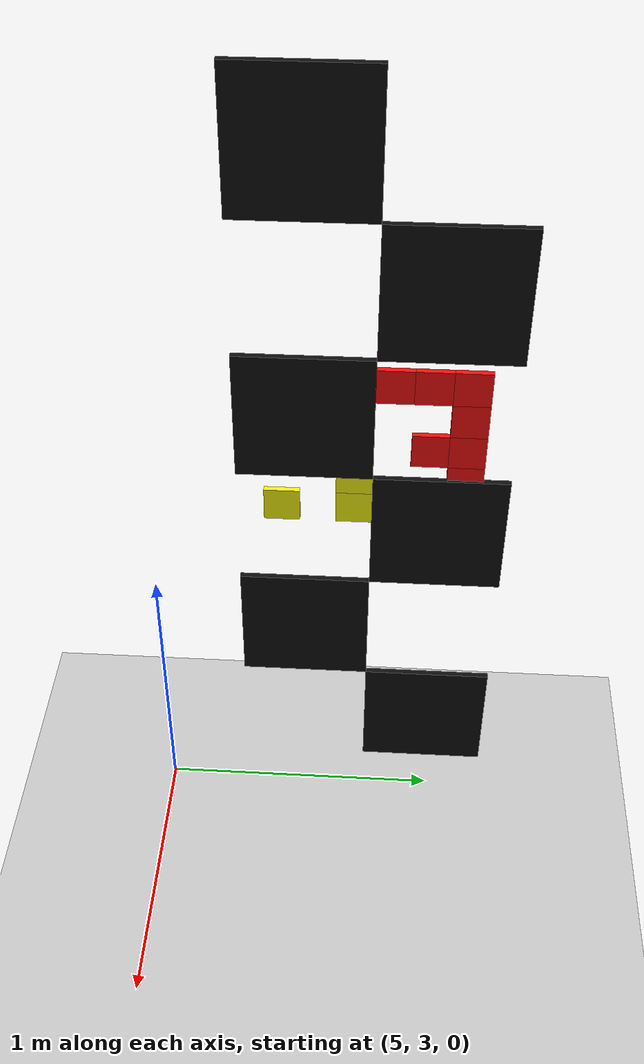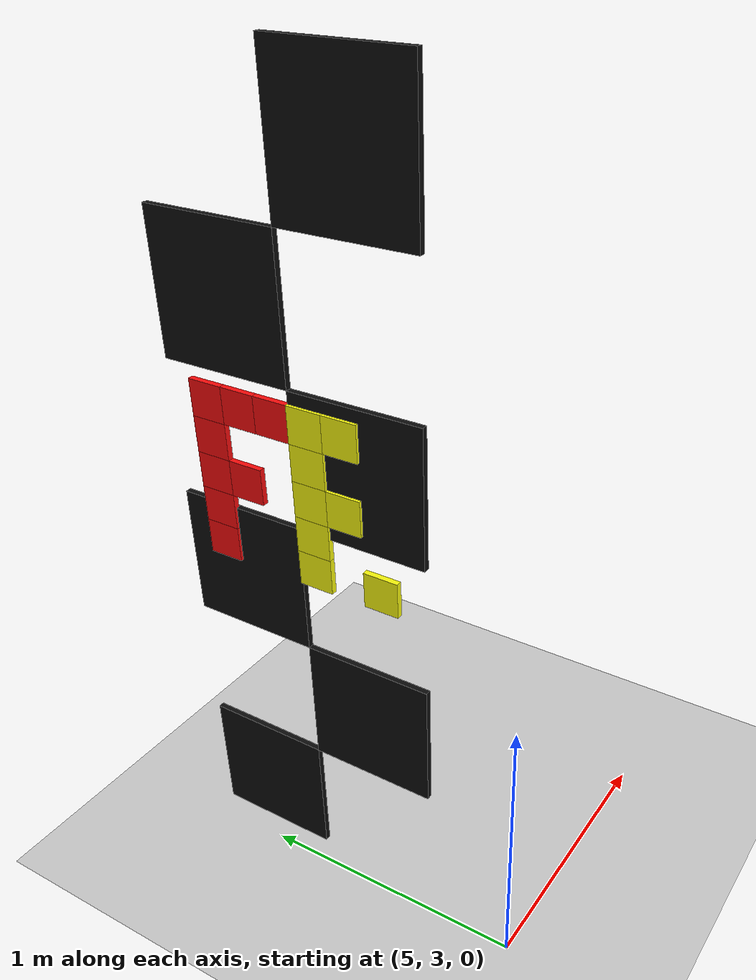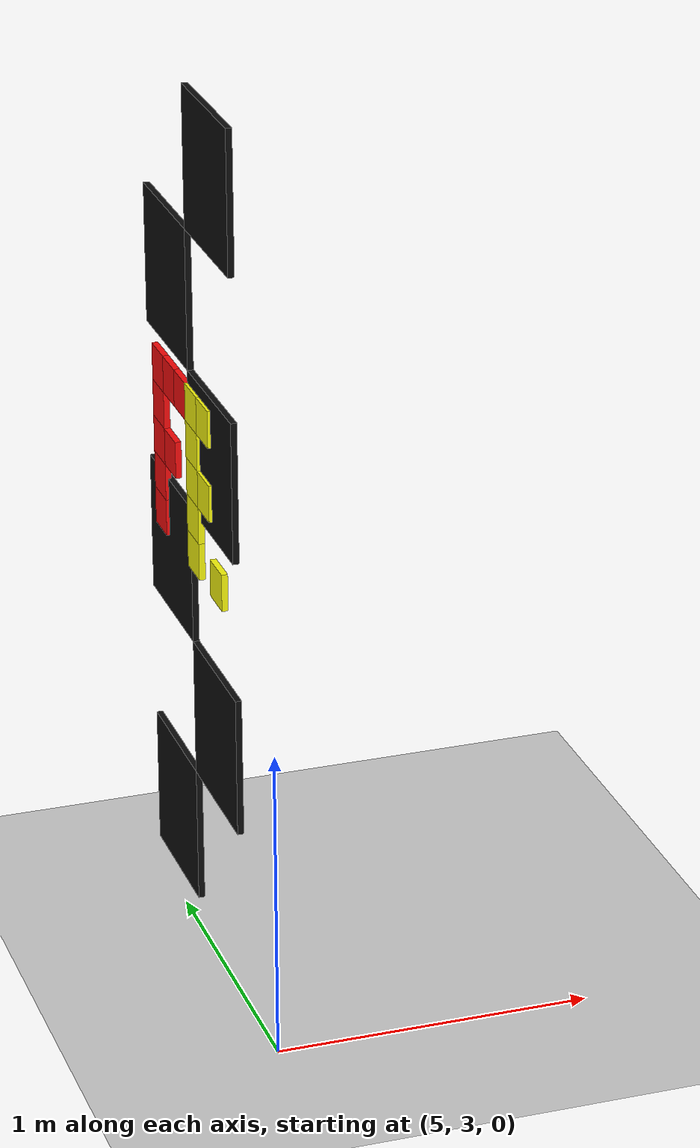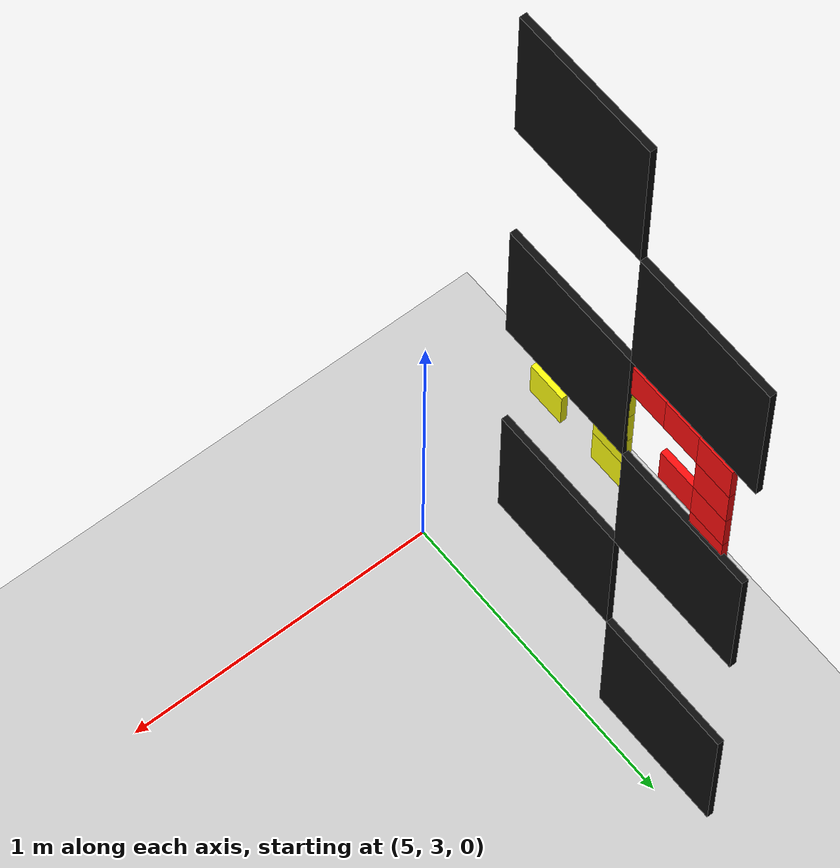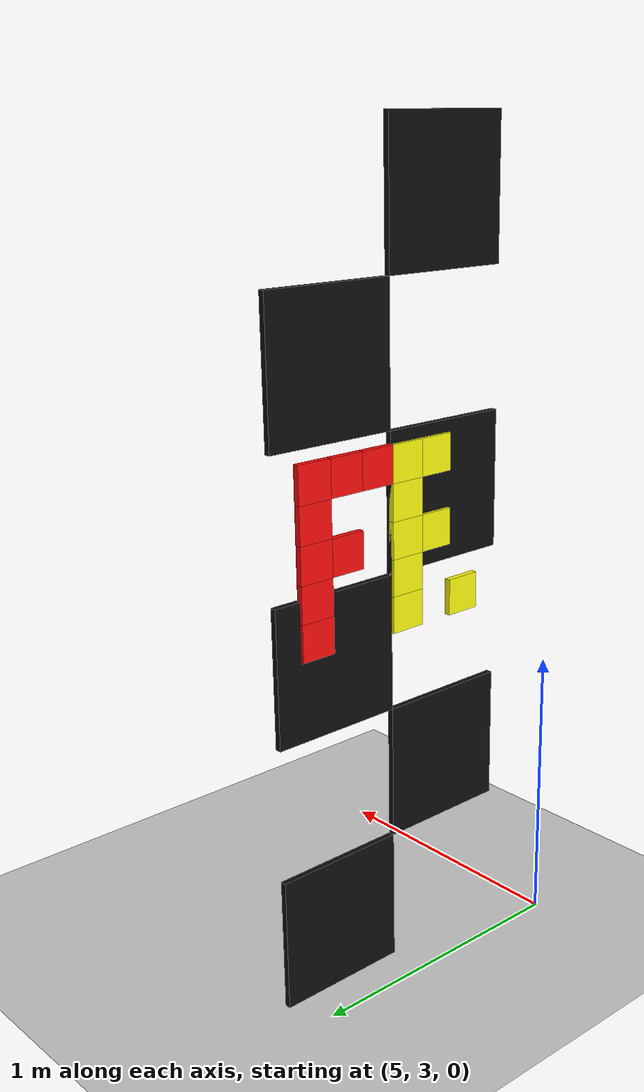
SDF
<sdf version="1.6">
 <world name="collab_workshop">
  <include><uri>model://ground_plane</uri></include>
  <include><uri>model://sun</uri></include>
  <model name="east_b_tile_0_5">
   <pose>4.98 3.975 0.3749999999999999 0 0 0.0</pose>
   <static>true</static>
   <link name="link">
    <visual name="visual">
     <geometry><box><size>0.02 0.45 0.45</size></box></geometry>
     <material><ambient>0.05 0.05 0.05 1</ambient><diffuse>0.05 0.05 0.05 1</diffuse></material>
    </visual>
   </link>
  </model>
  <model name="east_b_tile_1_4">
   <pose>4.98 3.525 0.8249999999999998 0 0 0.0</pose>
   <static>true</static>
   <link name="link">
    <visual name="visual">
     <geometry><box><size>0.02 0.45 0.45</size></box></geometry>
     <material><ambient>0.05 0.05 0.05 1</ambient><diffuse>0.05 0.05 0.05 1</diffuse></material>
    </visual>
   </link>
  </model>
  <model name="east_b_tile_2_5">
   <pose>4.98 3.975 1.275 0 0 0.0</pose>
   <static>true</static>
   <link name="link">
    <visual name="visual">
     <geometry><box><size>0.02 0.45 0.45</size></box></geometry>
     <material><ambient>0.05 0.05 0.05 1</ambient><diffuse>0.05 0.05 0.05 1</diffuse></material>
    </visual>
   </link>
  </model>
  <model name="east_b_tile_3_4">
   <pose>4.98 3.525 1.725 0 0 0.0</pose>
   <static>true</static>
   <link name="link">
    <visual name="visual">
     <geometry><box><size>0.02 0.45 0.45</size></box></geometry>
     <material><ambient>0.05 0.05 0.05 1</ambient><diffuse>0.05 0.05 0.05 1</diffuse></material>
    </visual>
   </link>
  </model>
  <model name="east_b_tile_4_5">
   <pose>4.98 3.975 2.175 0 0 0.0</pose>
   <static>true</static>
   <link name="link">
    <visual name="visual">
     <geometry><box><size>0.02 0.45 0.45</size></box></geometry>
     <material><ambient>0.05 0.05 0.05 1</ambient><diffuse>0.05 0.05 0.05 1</diffuse></material>
    </visual>
   </link>
  </model>
  <model name="east_b_tile_5_4">
   <pose>4.98 3.525 2.625 0 0 0.0</pose>
   <static>true</static>
   <link name="link">
    <visual name="visual">
     <geometry><box><size>0.02 0.45 0.45</size></box></geometry>
     <material><ambient>0.05 0.05 0.05 1</ambient><diffuse>0.05 0.05 0.05 1</diffuse></material>
    </visual>
   </link>
  </model>
  <model name="fac_letter_0_0_0">
   <pose>4.97 4.050000000000001 1.85 0 0 0.0</pose>
   <static>true</static>
   <link name="link">
    <visual name="visual">
     <geometry><box><size>0.02 0.12 0.12</size></box></geometry>
     <material><ambient>0.98 0.049 0.049 1</ambient><diffuse>0.98 0.049 0.049 1</diffuse></material>
    </visual>
   </link>
  </model>
  <model name="fac_letter_0_0_1">
   <pose>4.97 3.93 1.85 0 0 0.0</pose>
   <static>true</static>
   <link name="link">
    <visual name="visual">
     <geometry><box><size>0.02 0.12 0.12</size></box></geometry>
     <material><ambient>0.98 0.049 0.049 1</ambient><diffuse>0.98 0.049 0.049 1</diffuse></material>
    </visual>
   </link>
  </model>
  <model name="fac_letter_0_0_2">
   <pose>4.97 3.8100000000000005 1.85 0 0 0.0</pose>
   <static>true</static>
   <link name="link">
    <visual name="visual">
     <geometry><box><size>0.02 0.12 0.12</size></box></geometry>
     <material><ambient>0.98 0.049 0.049 1</ambient><diffuse>0.98 0.049 0.049 1</diffuse></material>
    </visual>
   </link>
  </model>
  <model name="fac_letter_0_1_0">
   <pose>4.97 4.050000000000001 1.73 0 0 0.0</pose>
   <static>true</static>
   <link name="link">
    <visual name="visual">
     <geometry><box><size>0.02 0.12 0.12</size></box></geometry>
     <material><ambient>0.98 0.049 0.049 1</ambient><diffuse>0.98 0.049 0.049 1</diffuse></material>
    </visual>
   </link>
  </model>
  <model name="fac_letter_0_2_0">
   <pose>4.97 4.050000000000001 1.61 0 0 0.0</pose>
   <static>true</static>
   <link name="link">
    <visual name="visual">
     <geometry><box><size>0.02 0.12 0.12</size></box></geometry>
     <material><ambient>0.98 0.049 0.049 1</ambient><diffuse>0.98 0.049 0.049 1</diffuse></material>
    </visual>
   </link>
  </model>
  <model name="fac_letter_0_2_1">
   <pose>4.97 3.93 1.61 0 0 0.0</pose>
   <static>true</static>
   <link name="link">
    <visual name="visual">
     <geometry><box><size>0.02 0.12 0.12</size></box></geometry>
     <material><ambient>0.98 0.049 0.049 1</ambient><diffuse>0.98 0.049 0.049 1</diffuse></material>
    </visual>
   </link>
  </model>
  <model name="fac_letter_0_3_0">
   <pose>4.97 4.050000000000001 1.4900000000000002 0 0 0.0</pose>
   <static>true</static>
   <link name="link">
    <visual name="visual">
     <geometry><box><size>0.02 0.12 0.12</size></box></geometry>
     <material><ambient>0.98 0.049 0.049 1</ambient><diffuse>0.98 0.049 0.049 1</diffuse></material>
    </visual>
   </link>
  </model>
  <model name="fac_letter_0_4_0">
   <pose>4.97 4.050000000000001 1.37 0 0 0.0</pose>
   <static>true</static>
   <link name="link">
    <visual name="visual">
     <geometry><box><size>0.02 0.12 0.12</size></box></geometry>
     <material><ambient>0.98 0.049 0.049 1</ambient><diffuse>0.98 0.049 0.049 1</diffuse></material>
    </visual>
   </link>
  </model>
  <model name="fac_letter_1_0_0">
   <pose>4.97 3.6900000000000004 1.85 0 0 0.0</pose>
   <static>true</static>
   <link name="link">
    <visual name="visual">
     <geometry><box><size>0.02 0.12 0.12</size></box></geometry>
     <material><ambient>0.98 0.98 0.049 1</ambient><diffuse>0.98 0.98 0.049 1</diffuse></material>
    </visual>
   </link>
  </model>
  <model name="fac_letter_1_0_1">
   <pose>4.97 3.5700000000000003 1.85 0 0 0.0</pose>
   <static>true</static>
   <link name="link">
    <visual name="visual">
     <geometry><box><size>0.02 0.12 0.12</size></box></geometry>
     <material><ambient>0.98 0.98 0.049 1</ambient><diffuse>0.98 0.98 0.049 1</diffuse></material>
    </visual>
   </link>
  </model>
  <model name="fac_letter_1_1_0">
   <pose>4.97 3.6900000000000004 1.73 0 0 0.0</pose>
   <static>true</static>
   <link name="link">
    <visual name="visual">
     <geometry><box><size>0.02 0.12 0.12</size></box></geometry>
     <material><ambient>0.98 0.98 0.049 1</ambient><diffuse>0.98 0.98 0.049 1</diffuse></material>
    </visual>
   </link>
  </model>
  <model name="fac_letter_1_2_0">
   <pose>4.97 3.6900000000000004 1.61 0 0 0.0</pose>
   <static>true</static>
   <link name="link">
    <visual name="visual">
     <geometry><box><size>0.02 0.12 0.12</size></box></geometry>
     <material><ambient>0.98 0.98 0.049 1</ambient><diffuse>0.98 0.98 0.049 1</diffuse></material>
    </visual>
   </link>
  </model>
  <model name="fac_letter_1_2_1">
   <pose>4.97 3.5700000000000003 1.61 0 0 0.0</pose>
   <static>true</static>
   <link name="link">
    <visual name="visual">
     <geometry><box><size>0.02 0.12 0.12</size></box></geometry>
     <material><ambient>0.98 0.98 0.049 1</ambient><diffuse>0.98 0.98 0.049 1</diffuse></material>
    </visual>
   </link>
  </model>
  <model name="fac_letter_1_3_0">
   <pose>4.97 3.6900000000000004 1.4900000000000002 0 0 0.0</pose>
   <static>true</static>
   <link name="link">
    <visual name="visual">
     <geometry><box><size>0.02 0.12 0.12</size></box></geometry>
     <material><ambient>0.98 0.98 0.049 1</ambient><diffuse>0.98 0.98 0.049 1</diffuse></material>
    </visual>
   </link>
  </model>
  <model name="fac_letter_1_4_0">
   <pose>4.97 3.6900000000000004 1.37 0 0 0.0</pose>
   <static>true</static>
   <link name="link">
    <visual name="visual">
     <geometry><box><size>0.02 0.12 0.12</size></box></geometry>
     <material><ambient>0.98 0.98 0.049 1</ambient><diffuse>0.98 0.98 0.049 1</diffuse></material>
    </visual>
   </link>
  </model>
  <model name="fac_letter_1_4_2">
   <pose>4.97 3.45 1.37 0 0 0.0</pose>
   <static>true</static>
   <link name="link">
    <visual name="visual">
     <geometry><box><size>0.02 0.12 0.12</size></box></geometry>
     <material><ambient>0.98 0.98 0.049 1</ambient><diffuse>0.98 0.98 0.049 1</diffuse></material>
    </visual>
   </link>
  </model>
 </world>
</sdf>
